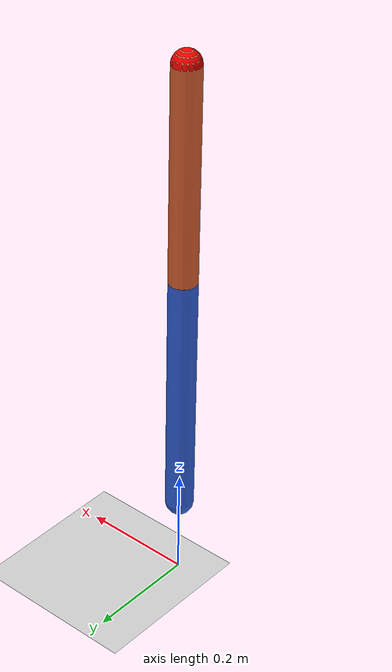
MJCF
<mujoco model="double_inverted_pendulum">
    <compiler angle="radian" autolimits="true"/>
    <option timestep="0.001" gravity="0 0 -9.81" integrator="Euler"/>

    <default>
        <joint damping="0.03" armature="0.01"/>
        <geom type="capsule" size="0.025" rgba="0.2 0.4 0.9 1"/>
    </default>

    <worldbody>
        <light name="top_light" pos="0 0 3" dir="0 0 -1"/>
        <geom name="ground" type="plane" size="2 2 0.05" rgba="0.8 0.8 0.8 1"/>
        <body name="link1" pos="0 0 0.15">
            <joint name="joint1" type="hinge" axis="0 1 0" limited="true" range="-1.2 1.2"/>
            <geom name="link1_geom" fromto="0 0 0 0 0 0.45" mass="0.6"/>
            <body name="link2" pos="0 0 0.45">
                <joint name="joint2" type="hinge" axis="0 1 0" limited="true" range="-1.5 1.5"/>
                <geom name="link2_geom" fromto="0 0 0 0 0 0.38" mass="0.35" rgba="0.9 0.4 0.2 1"/>
                <site name="tip" pos="0 0 0.38" size="0.025" rgba="1 0 0 1"/>
            </body>
        </body>
    </worldbody>

    <actuator>
        <motor name="joint1_motor" joint="joint1" ctrlrange="-25 25" gear="1"/>
        <motor name="joint2_motor" joint="joint2" ctrlrange="-15 15" gear="1"/>
    </actuator>

    <sensor>
        <jointpos name="joint1_position" joint="joint1"/>
        <jointpos name="joint2_position" joint="joint2"/>
        <jointvel name="joint1_velocity" joint="joint1"/>
        <jointvel name="joint2_velocity" joint="joint2"/>
        <actuatorfrc name="joint1_torque" actuator="joint1_motor"/>
        <actuatorfrc name="joint2_torque" actuator="joint2_motor"/>
        <framepos name="tip_position" objtype="site" objname="tip"/>
        <clock name="simulation_clock"/>
    </sensor>

    <keyframe>
        <key name="small_error" qpos="0.12 -0.08" qvel="0 0"/>
    </keyframe>
</mujoco>
